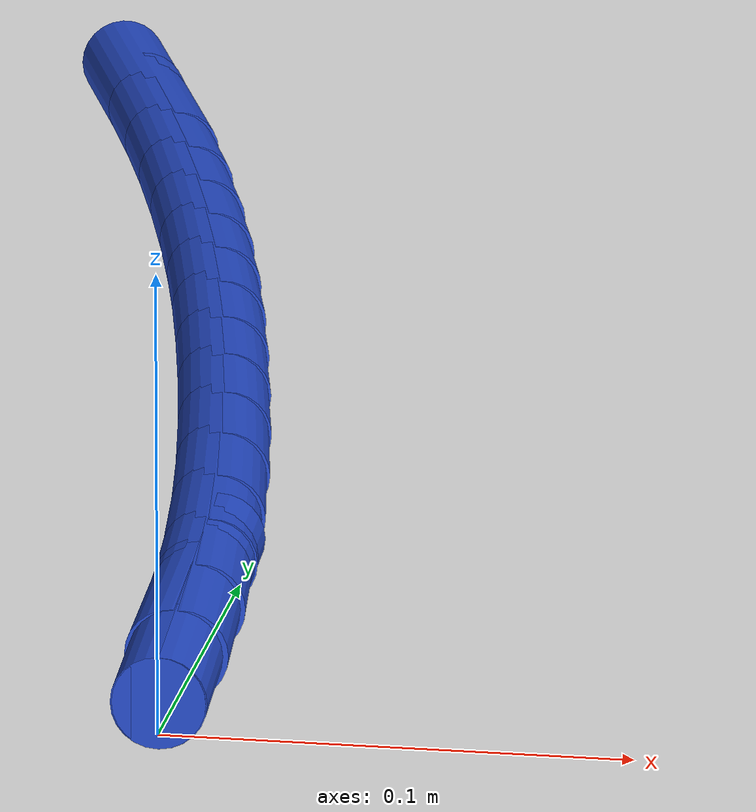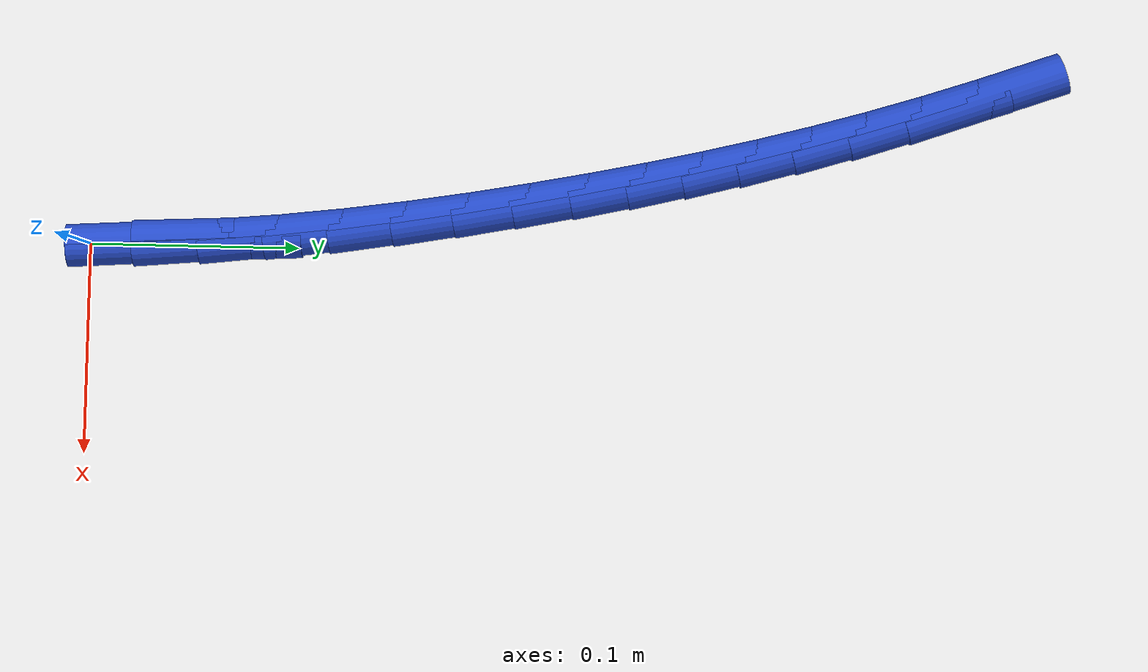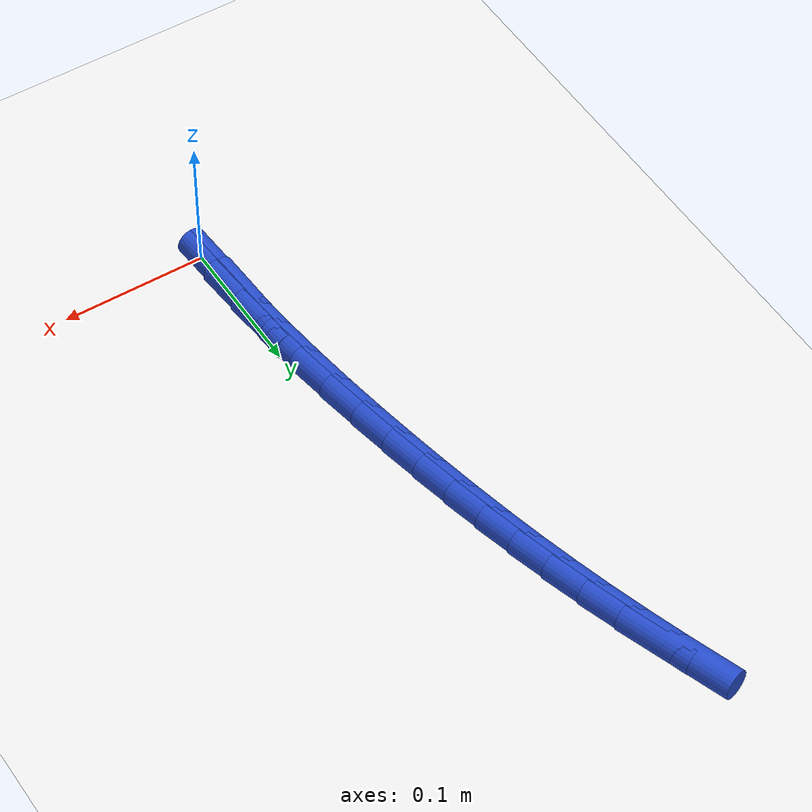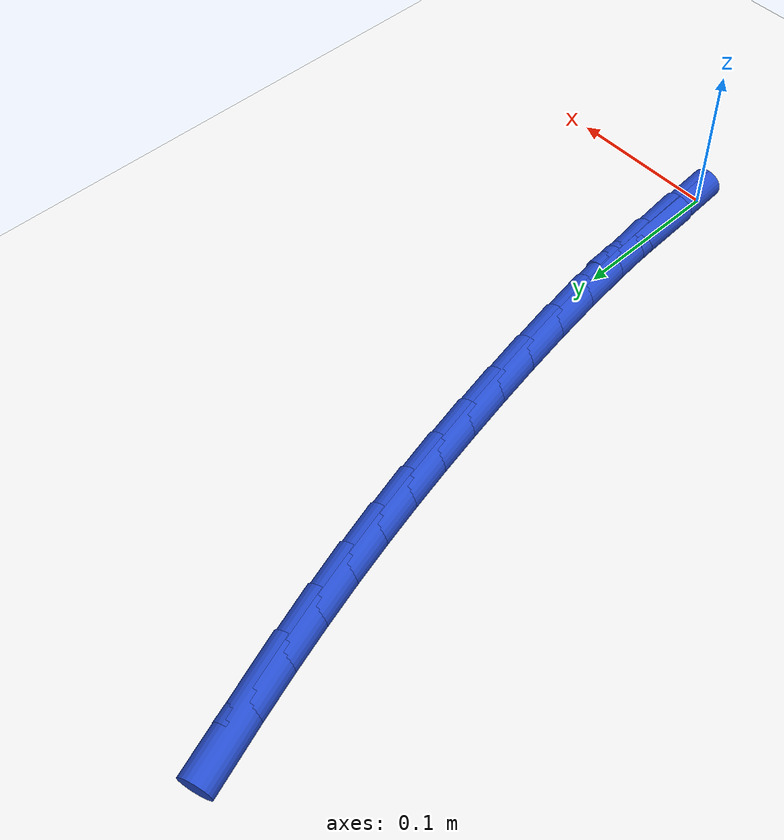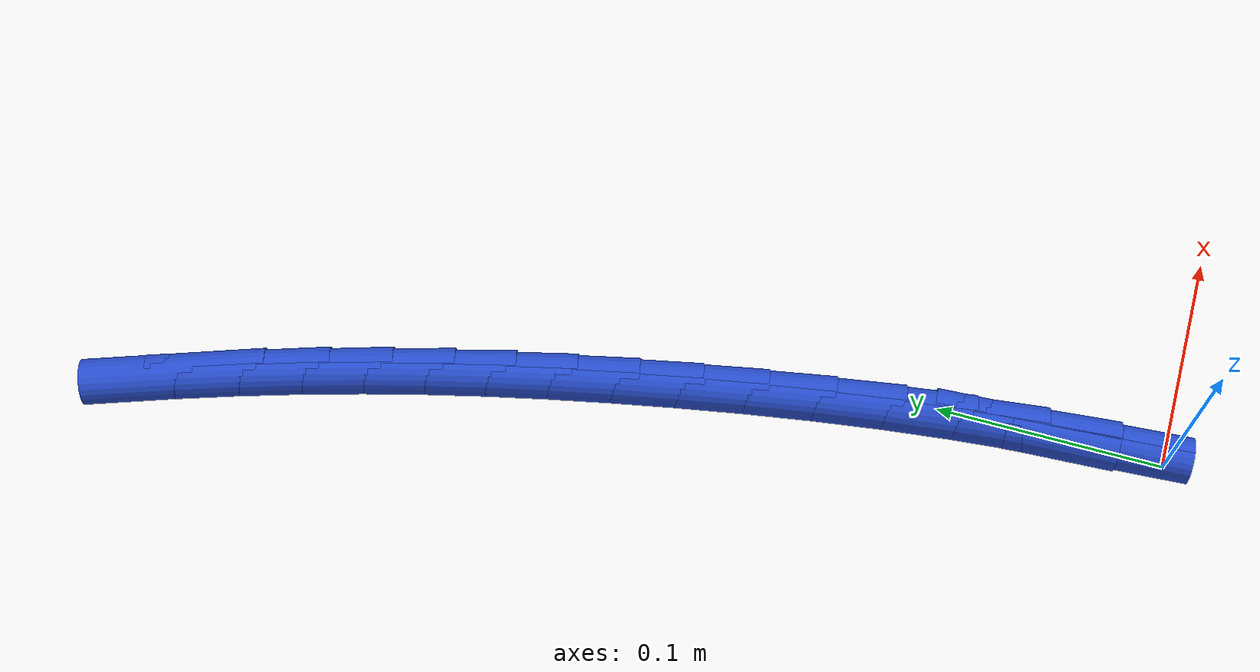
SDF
<sdf version="1.6">
 <world name="default">
  <model name="ground_plane">
   <static>1</static>
   <link name="link">
    <collision name="collision">
     <geometry><plane><normal>0 0 1</normal><size>100 100</size></plane></geometry>
     <surface><friction><ode><mu>100</mu><mu2>50</mu2></ode></friction></surface>
    </collision>
    <visual name="visual">
     <cast_shadows>0</cast_shadows>
     <geometry><plane><normal>0 0 1</normal><size>100 100</size></plane></geometry>
     <material>
      <script><uri>file://media/materials/scripts/gazebo.material</uri><name>Gazebo/WhiteGlow</name></script>
     </material>
    </visual>
   </link>
  </model>
  <model name="line">
   <link name="link_1">
    <pose>-0.0008094161486921087 0.03078999520908032 0.01 0 1.57 -1.5099835859297035</pose>
    <collision name="collision">
     <geometry><cylinder><radius>0.01</radius><length>0.08</length></cylinder></geometry>
    </collision>
    <visual name="visual">
     <material>
      <script><name>Gazebo/Blue</name><uri>file://media/materials/scripts/gazebo.material</uri></script>
     </material>
     <geometry><cylinder><radius>0.01</radius><length>0.08</length></cylinder></geometry>
    </visual>
   </link>
   <link name="link_2">
    <pose>-0.00269315820113394 0.0617279090074299 0.01 0 1.57 -1.4797686581550331</pose>
    <collision name="collision">
     <geometry><cylinder><radius>0.01</radius><length>0.08</length></cylinder></geometry>
    </collision>
    <visual name="visual">
     <material>
      <script><name>Gazebo/Blue</name><uri>file://media/materials/scripts/gazebo.material</uri></script>
     </material>
     <geometry><cylinder><radius>0.01</radius><length>0.08</length></cylinder></geometry>
    </visual>
   </link>
   <link name="link_3">
    <pose>-0.005514027168656915 0.09263140711815195 0.01 0 1.57 -1.4533471675095304</pose>
    <collision name="collision">
     <geometry><cylinder><radius>0.01</radius><length>0.08</length></cylinder></geometry>
    </collision>
    <visual name="visual">
     <material>
      <script><name>Gazebo/Blue</name><uri>file://media/materials/scripts/gazebo.material</uri></script>
     </material>
     <geometry><cylinder><radius>0.01</radius><length>0.08</length></cylinder></geometry>
    </visual>
   </link>
   <link name="link_4">
    <pose>-0.009134824062592433 0.12331815526434962 0.01 0 1.57 -1.430300043548118</pose>
    <collision name="collision">
     <geometry><cylinder><radius>0.01</radius><length>0.08</length></cylinder></geometry>
    </collision>
    <visual name="visual">
     <material>
      <script><name>Gazebo/Blue</name><uri>file://media/materials/scripts/gazebo.material</uri></script>
     </material>
     <geometry><cylinder><radius>0.01</radius><length>0.08</length></cylinder></geometry>
    </visual>
   </link>
   <link name="link_5">
    <pose>-0.01341834989427192 0.15360581916912627 0.01 0 1.57 -1.4103016822098695</pose>
    <collision name="collision">
     <geometry><cylinder><radius>0.01</radius><length>0.08</length></cylinder></geometry>
    </collision>
    <visual name="visual">
     <material>
      <script><name>Gazebo/Blue</name><uri>file://media/materials/scripts/gazebo.material</uri></script>
     </material>
     <geometry><cylinder><radius>0.01</radius><length>0.08</length></cylinder></geometry>
    </visual>
   </link>
   <link name="link_6">
    <pose>-0.0182274056750268 0.1833120645555852 0.01 0 1.57 -1.3931137880369273</pose>
    <collision name="collision">
     <geometry><cylinder><radius>0.01</radius><length>0.08</length></cylinder></geometry>
    </collision>
    <visual name="visual">
     <material>
      <script><name>Gazebo/Blue</name><uri>file://media/materials/scripts/gazebo.material</uri></script>
     </material>
     <geometry><cylinder><radius>0.01</radius><length>0.08</length></cylinder></geometry>
    </visual>
   </link>
   <link name="link_7">
    <pose>-0.023424792416188476 0.21225455714682956 0.01 0 1.57 -1.3785484037778624</pose>
    <collision name="collision">
     <geometry><cylinder><radius>0.01</radius><length>0.08</length></cylinder></geometry>
    </collision>
    <visual name="visual">
     <material>
      <script><name>Gazebo/Blue</name><uri>file://media/materials/scripts/gazebo.material</uri></script>
     </material>
     <geometry><cylinder><radius>0.01</radius><length>0.08</length></cylinder></geometry>
    </visual>
   </link>
   <link name="link_8">
    <pose>-0.02887496337622601 0.24025413228240616 0.01 0 1.57 -1.3646404065300404</pose>
    <collision name="collision">
     <geometry><cylinder><radius>0.01</radius><length>0.08</length></cylinder></geometry>
    </collision>
    <visual name="visual">
     <material>
      <script><name>Gazebo/Blue</name><uri>file://media/materials/scripts/gazebo.material</uri></script>
     </material>
     <geometry><cylinder><radius>0.01</radius><length>0.08</length></cylinder></geometry>
    </visual>
   </link>
   <link name="link_9">
    <pose>-0.034531549262630766 0.2673027003803755 0.01 0 1.57 -1.3486882179091797</pose>
    <collision name="collision">
     <geometry><cylinder><radius>0.01</radius><length>0.08</length></cylinder></geometry>
    </collision>
    <visual name="visual">
     <material>
      <script><name>Gazebo/Blue</name><uri>file://media/materials/scripts/gazebo.material</uri></script>
     </material>
     <geometry><cylinder><radius>0.01</radius><length>0.08</length></cylinder></geometry>
    </visual>
   </link>
   <link name="link_10">
    <pose>-0.040480965479157485 0.2936469016429289 0.01 0 1.57 -1.3308129316570478</pose>
    <collision name="collision">
     <geometry><cylinder><radius>0.01</radius><length>0.08</length></cylinder></geometry>
    </collision>
    <visual name="visual">
     <material>
      <script><name>Gazebo/Blue</name><uri>file://media/materials/scripts/gazebo.material</uri></script>
     </material>
     <geometry><cylinder><radius>0.01</radius><length>0.08</length></cylinder></geometry>
    </visual>
   </link>
   <link name="link_11">
    <pose>-0.04682043675863811 0.3195541125328349 0.01 0 1.57 -1.3115223338045379</pose>
    <collision name="collision">
     <geometry><cylinder><radius>0.01</radius><length>0.08</length></cylinder></geometry>
    </collision>
    <visual name="visual">
     <material>
      <script><name>Gazebo/Blue</name><uri>file://media/materials/scripts/gazebo.material</uri></script>
     </material>
     <geometry><cylinder><radius>0.01</radius><length>0.08</length></cylinder></geometry>
    </visual>
   </link>
   <link name="link_12">
    <pose>-0.053647187833904555 0.3452917095128619 0.01 0 1.57 -1.2914332955139058</pose>
    <collision name="collision">
     <geometry><cylinder><radius>0.01</radius><length>0.08</length></cylinder></geometry>
    </collision>
    <visual name="visual">
     <material>
      <script><name>Gazebo/Blue</name><uri>file://media/materials/scripts/gazebo.material</uri></script>
     </material>
     <geometry><cylinder><radius>0.01</radius><length>0.08</length></cylinder></geometry>
    </visual>
   </link>
   <link name="link_13">
    <pose>-0.061058443437788754 0.3711270690457787 0.01 0 1.57 -1.2712066916418039</pose>
    <collision name="collision">
     <geometry><cylinder><radius>0.01</radius><length>0.08</length></cylinder></geometry>
    </collision>
    <visual name="visual">
     <material>
      <script><name>Gazebo/Blue</name><uri>file://media/materials/scripts/gazebo.material</uri></script>
     </material>
     <geometry><cylinder><radius>0.01</radius><length>0.08</length></cylinder></geometry>
    </visual>
   </link>
   <link name="link_14">
    <pose>-0.06915142830312265 0.3973275675943538 0.01 0 1.57 -1.2514760581382012</pose>
    <collision name="collision">
     <geometry><cylinder><radius>0.01</radius><length>0.08</length></cylinder></geometry>
    </collision>
    <visual name="visual">
     <material>
      <script><name>Gazebo/Blue</name><uri>file://media/materials/scripts/gazebo.material</uri></script>
     </material>
     <geometry><cylinder><radius>0.01</radius><length>0.08</length></cylinder></geometry>
    </visual>
   </link>
   <link name="link_15">
    <pose>-0.07802336716273815 0.4241605816213558 0.01 0 1.57 -1.2327857934608162</pose>
    <collision name="collision">
     <geometry><cylinder><radius>0.01</radius><length>0.08</length></cylinder></geometry>
    </collision>
    <visual name="visual">
     <material>
      <script><name>Gazebo/Blue</name><uri>file://media/materials/scripts/gazebo.material</uri></script>
     </material>
     <geometry><cylinder><radius>0.01</radius><length>0.08</length></cylinder></geometry>
    </visual>
   </link>
   <link name="link_271">
    <pose>-0.0008474110844195453 0.030833156476500756 0.01 0 1.57 -1.5020920948345724</pose>
    <collision name="collision">
     <geometry><cylinder><radius>0.01</radius><length>0.08</length></cylinder></geometry>
    </collision>
    <visual name="visual">
     <material>
      <script><name>Gazebo/Blue</name><uri>file://media/materials/scripts/gazebo.material</uri></script>
     </material>
     <geometry><cylinder><radius>0.01</radius><length>0.08</length></cylinder></geometry>
    </visual>
   </link>
   <link name="link_272">
    <pose>-0.002997117686953301 0.06207319914679037 0.01 0 1.57 -1.5225501929702718</pose>
    <collision name="collision">
     <geometry><cylinder><radius>0.01</radius><length>0.08</length></cylinder></geometry>
    </collision>
    <visual name="visual">
     <material>
      <script><name>Gazebo/Blue</name><uri>file://media/materials/scripts/gazebo.material</uri></script>
     </material>
     <geometry><cylinder><radius>0.01</radius><length>0.08</length></cylinder></geometry>
    </visual>
   </link>
  </model>
 </world>
</sdf>
